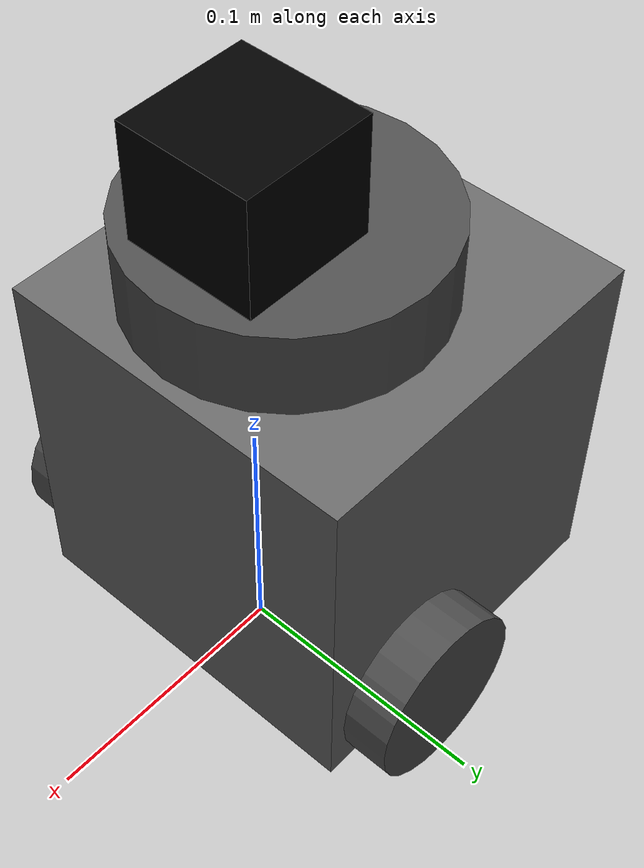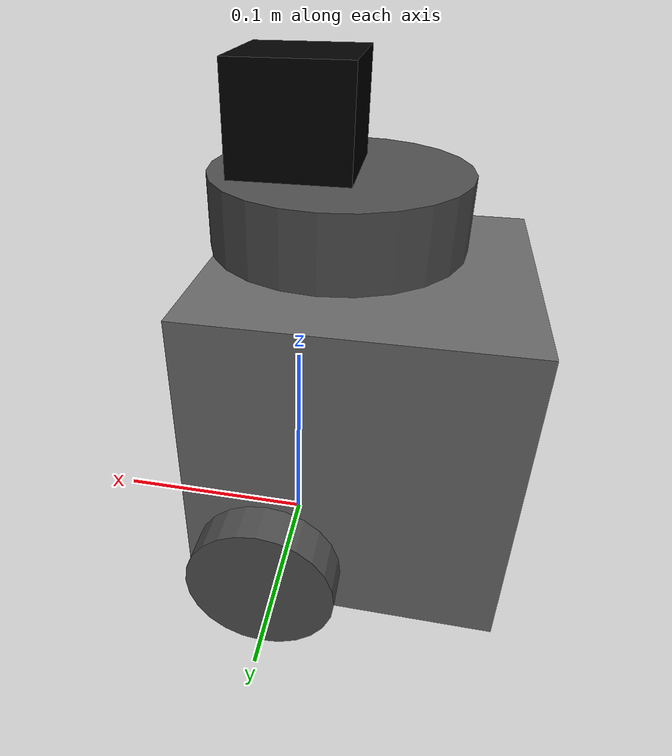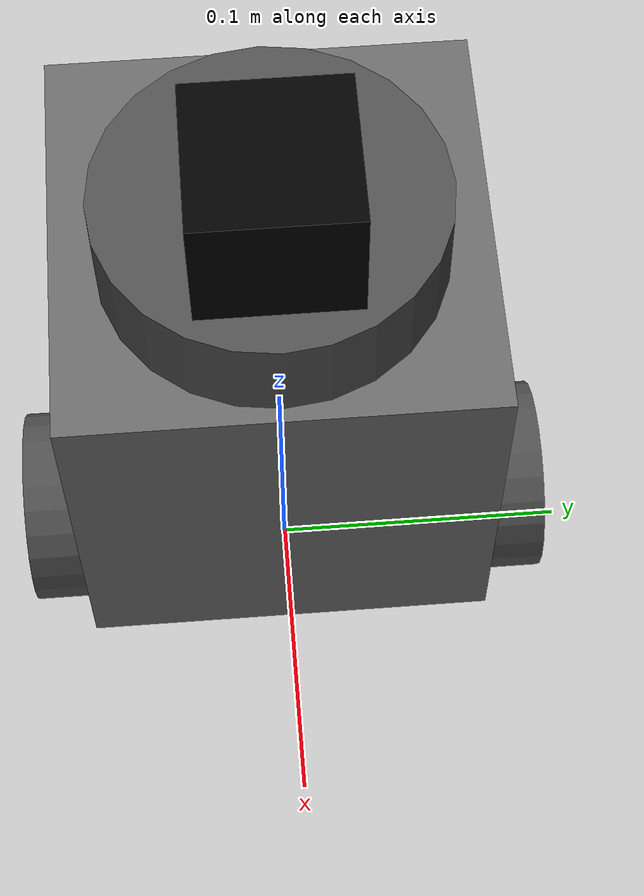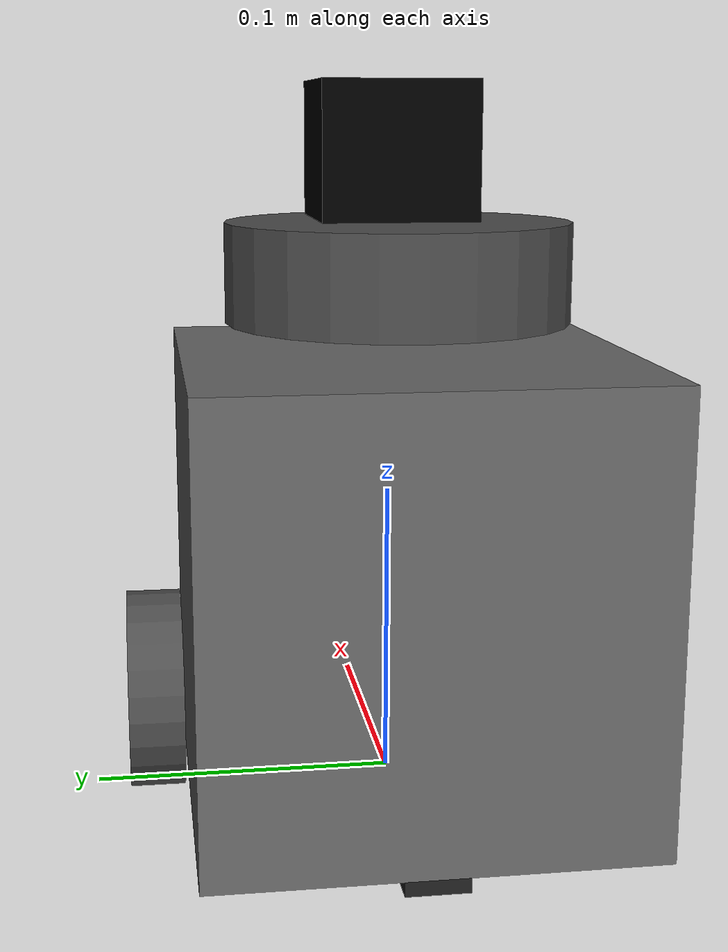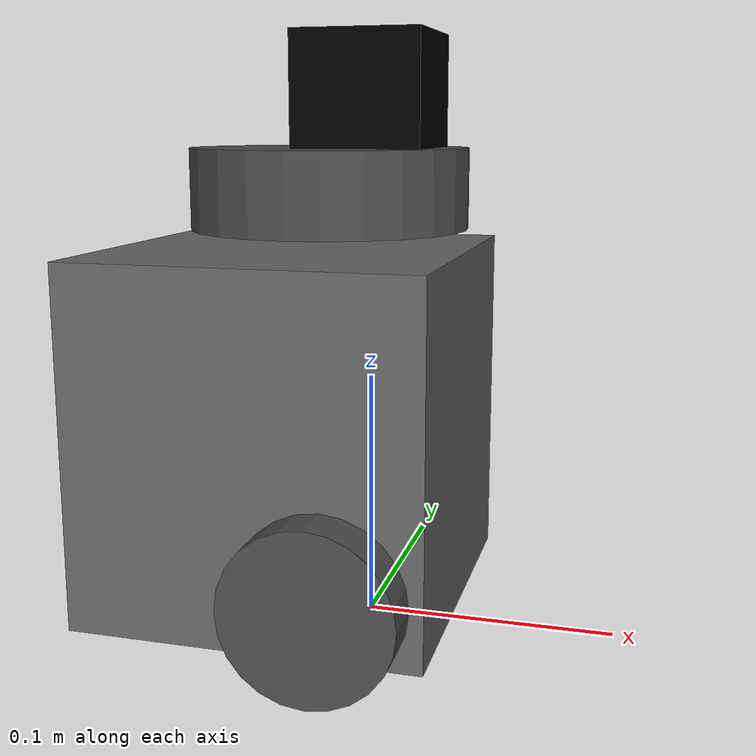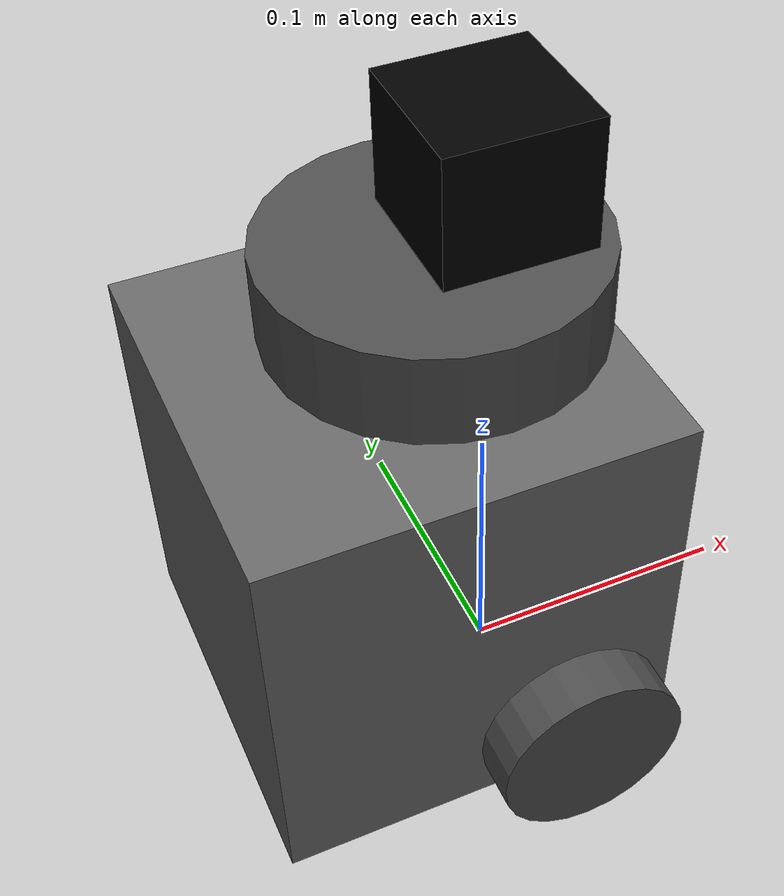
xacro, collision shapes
<?xml version="1.0" ?>
<robot name="turtlebot3_burger" xmlns:xacro="http://ros.org/wiki/xacro">
  <xacro:include filename="$(find cs_bot)/urdf/common_properties.xacro"/>
  <xacro:include filename="$(find cs_bot)/urdf/rafael/turtlebot3_burger.gazebo.xacro"/>

  <!-- Camera Gazebo plugin configuration -->
  <link name="camera_link">
    <visual>
      <geometry>
        <box size="0.05 0.05 0.05"/> <!-- Camera size -->
      </geometry>
      <origin xyz="0 0 0" rpy="0 0 0"/>
      <material>
        <color rgba="0 0 0 1"/>
      </material>
    </visual>
    <collision>
      <geometry>
        <box size="0.05 0.05 0.05"/>
      </geometry>
      <origin xyz="0 0 0" rpy="0 0 0"/>
    </collision>
    <inertial>
      <mass value="0.1"/>
      <origin xyz="0 0 0" rpy="0 0 0"/>
      <inertia ixx="0.0001" ixy="0.0" ixz="0.0" iyy="0.0001" iyz="0.0" izz="0.0001"/>
    </inertial>
  </link>

  <!-- Attach Camera Link to Base Link -->
  <joint name="camera_joint" type="fixed">
    <parent link="base_link"/>
    <child link="camera_link"/>
    <origin xyz="0 0 0.2" rpy="0 0 0"/> <!-- Position the camera above base_link -->
  </joint>

  <!-- Add Gazebo Sensor Plugin -->
  <gazebo reference="camera_link">
    <sensor type="camera" name="camera_sensor">
      <pose>0 0 0 0 0 0</pose>
      <update_rate>30</update_rate>
      <camera>
        <horizontal_fov>1.3962634</horizontal_fov> <!-- 80 degrees FOV -->
        <image>
          <width>640</width>
          <height>480</height>
          <format>R8G8B8</format>
        </image>
        <clip>
          <near>0.1</near>
          <far>100</far>
        </clip>
      </camera>
      <plugin name="gazebo_ros_camera" filename="libgazebo_ros_camera.so">
        <alwaysOn>true</alwaysOn>
        <updateRate>30</updateRate>
        <cameraName>camera</cameraName>
        <imageTopicName>/rafael/camera/image_raw</imageTopicName>
        <cameraInfoTopicName>/rafael/camera/camera_info</cameraInfoTopicName>
        <frameName>camera_link</frameName>
      </plugin>
    </sensor>
  </gazebo>

  <link name="base_footprint"/>

  <joint name="base_joint" type="fixed">
    <parent link="base_footprint"/>
    <child link="base_link"/>
    <origin xyz="0.0 0.0 0.010" rpy="0 0 0"/>
  </joint>

  <link name="base_link">
    <visual>
      <origin xyz="-0.032 0 0.0" rpy="0 0 0"/>
      <geometry>
        <mesh filename="package://turtlebot3_description/meshes/bases/burger_base.stl" scale="0.001 0.001 0.001"/>
      </geometry>
      <material name="light_black"/>
    </visual>

    <collision>
      <origin xyz="-0.032 0 0.070" rpy="0 0 0"/>
      <geometry>
        <box size="0.140 0.140 0.143"/>
      </geometry>
    </collision>

    <inertial>
      <origin xyz="0 0 0" rpy="0 0 0"/>
      <mass value="8.2573504e-01"/>
      <inertia ixx="2.2124416e-03" ixy="-1.2294101e-05" ixz="3.4938785e-05"
               iyy="2.1193702e-03" iyz="-5.0120904e-06"
               izz="2.0064271e-03" />
    </inertial>
  </link>

  <joint name="wheel_left_joint" type="continuous">
    <parent link="base_link"/>
    <child link="wheel_left_link"/>
    <origin xyz="0.0 0.08 0.023" rpy="-1.57 0 0"/>
    <axis xyz="0 0 1"/>
  </joint>

  <link name="wheel_left_link">
    <visual>
      <origin xyz="0 0 0" rpy="1.57 0 0"/>
      <geometry>
        <mesh filename="package://turtlebot3_description/meshes/wheels/left_tire.stl" scale="0.001 0.001 0.001"/>
      </geometry>
      <material name="dark"/>
    </visual>

    <collision>
      <origin xyz="0 0 0" rpy="0 0 0"/>
      <geometry>
        <cylinder length="0.018" radius="0.033"/>
      </geometry>
    </collision>

    <inertial>
      <origin xyz="0 0 0" />
      <mass value="2.8498940e-02" />
      <inertia ixx="1.1175580e-05" ixy="-4.2369783e-11" ixz="-5.9381719e-09"
               iyy="1.1192413e-05" iyz="-1.4400107e-11"
               izz="2.0712558e-05" />
      </inertial>
  </link>

  <joint name="wheel_right_joint" type="continuous">
    <parent link="base_link"/>
    <child link="wheel_right_link"/>
    <origin xyz="0.0 -0.080 0.023" rpy="-1.57 0 0"/>
    <axis xyz="0 0 1"/>
  </joint>

  <link name="wheel_right_link">
    <visual>
      <origin xyz="0 0 0" rpy="1.57 0 0"/>
      <geometry>
        <mesh filename="package://turtlebot3_description/meshes/wheels/right_tire.stl" scale="0.001 0.001 0.001"/>
      </geometry>
      <material name="dark"/>
    </visual>

    <collision>
      <origin xyz="0 0 0" rpy="0 0 0"/>
      <geometry>
        <cylinder length="0.018" radius="0.033"/>
      </geometry>
    </collision>

    <inertial>
      <origin xyz="0 0 0" />
      <mass value="2.8498940e-02" />
      <inertia ixx="1.1175580e-05" ixy="-4.2369783e-11" ixz="-5.9381719e-09"
               iyy="1.1192413e-05" iyz="-1.4400107e-11"
               izz="2.0712558e-05" />
      </inertial>
  </link>

  <joint name="caster_back_joint" type="fixed">
    <parent link="base_link"/>
    <child link="caster_back_link"/>
    <origin xyz="-0.081 0 -0.004" rpy="-1.57 0 0"/>
  </joint>

  <link name="caster_back_link">
    <collision>
      <origin xyz="0 0.001 0" rpy="0 0 0"/>
      <geometry>
        <box size="0.030 0.009 0.020"/>
      </geometry>
    </collision>

    <inertial>
      <origin xyz="0 0 0" />
      <mass value="0.005" />
      <inertia ixx="0.001" ixy="0.0" ixz="0.0"
               iyy="0.001" iyz="0.0"
               izz="0.001" />
    </inertial>
  </link>

  <joint name="imu_joint" type="fixed">
    <parent link="base_link"/>
    <child link="imu_link"/>
    <origin xyz="-0.032 0 0.068" rpy="0 0 0"/>
  </joint>

  <link name="imu_link"/>

  <joint name="scan_joint" type="fixed">
    <parent link="base_link"/>
    <child link="base_scan"/>
    <origin xyz="-0.032 0 0.172" rpy="0 0 0"/>
  </joint>

  <link name="base_scan">
    <visual>
      <origin xyz="0 0 0.0" rpy="0 0 0"/>
      <geometry>
        <mesh filename="package://turtlebot3_description/meshes/sensors/lds.stl" scale="0.001 0.001 0.001"/>
      </geometry>
      <material name="dark"/>
    </visual>

    <collision>
      <origin xyz="0.015 0 -0.0065" rpy="0 0 0"/>
      <geometry>
        <cylinder length="0.0315" radius="0.055"/>
      </geometry>
    </collision>

    <inertial>
      <mass value="0.114" />
      <origin xyz="0 0 0" />
      <inertia ixx="0.001" ixy="0.0" ixz="0.0"
               iyy="0.001" iyz="0.0"
               izz="0.001" />
    </inertial>
  </link>

</robot>

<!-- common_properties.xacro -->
<robot name="xacro_properties" xmlns:xacro="http://ros.org/wiki/xacro">

  <!-- Init colour -->
  <material name="black">
      <color rgba="0.0 0.0 0.0 1.0"/>
  </material>

  <material name="dark">
    <color rgba="0.3 0.3 0.3 1.0"/>
  </material>
  <material name="light_black">
    <color rgba="0.4 0.4 0.4 1.0"/>
  </material>

  <material name="blue">
    <color rgba="0.0 0.0 0.8 1.0"/>
  </material>

  <material name="green">
    <color rgba="0.0 0.8 0.0 1.0"/>
  </material>

  <material name="grey">
    <color rgba="0.5 0.5 0.5 1.0"/>
  </material>

  <material name="orange">
    <color rgba="${255/255} ${108/255} ${10/255} 1.0"/>
  </material>

  <material name="brown">
    <color rgba="${222/255} ${207/255} ${195/255} 1.0"/>
  </material>

  <material name="red">
    <color rgba="0.8 0.0 0.0 1.0"/>
  </material>

  <material name="white">
    <color rgba="1.0 1.0 1.0 1.0"/>
  </material>

  <!-- Gazebo materials -->
  <gazebo reference="base_link">
    <material>Gazebo/Blue</material>
  </gazebo>

  <gazebo reference="wheel_left_link">
    <material>Gazebo/Blue</material>
  </gazebo>

  <gazebo reference="wheel_right_link">
    <material>Gazebo/Blue</material>
  </gazebo>

  <gazebo reference="caster_back_link">
    <material>Gazebo/Blue</material>
  </gazebo>
</robot>
